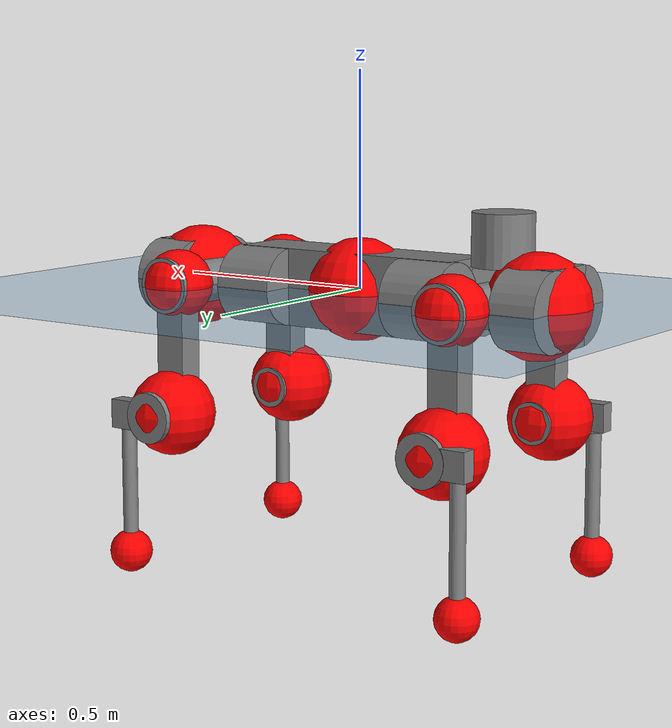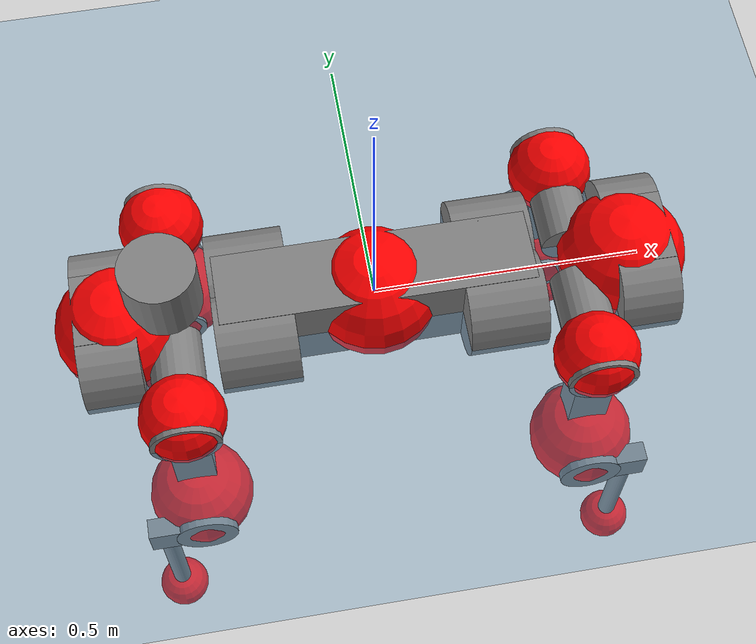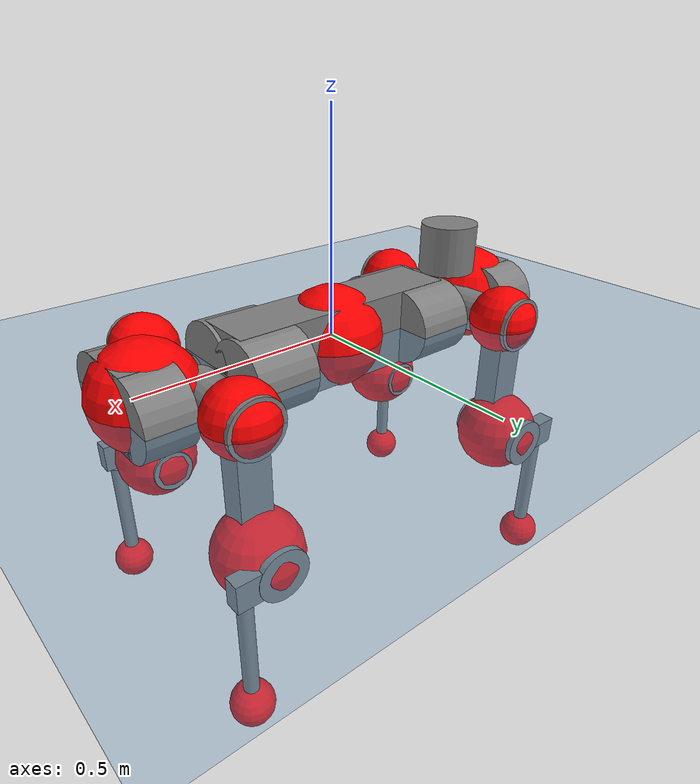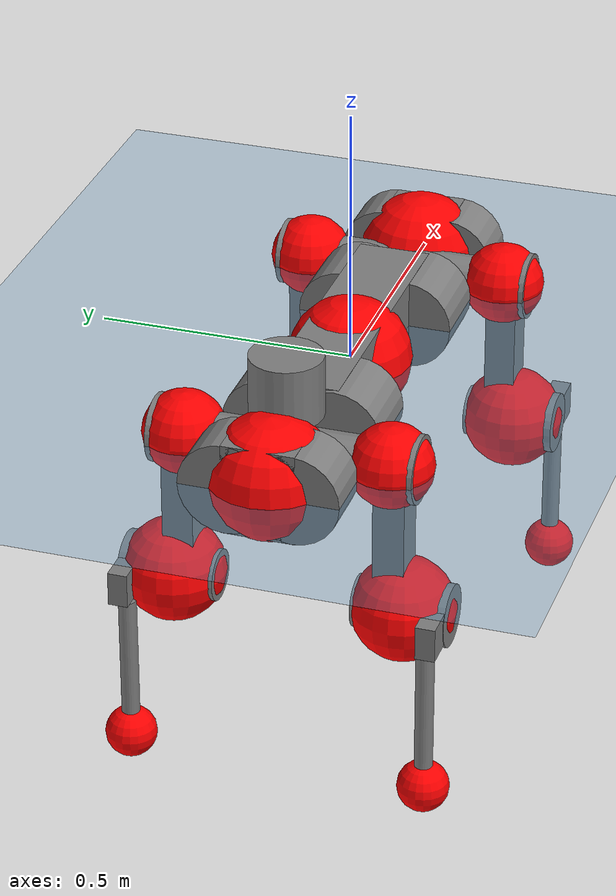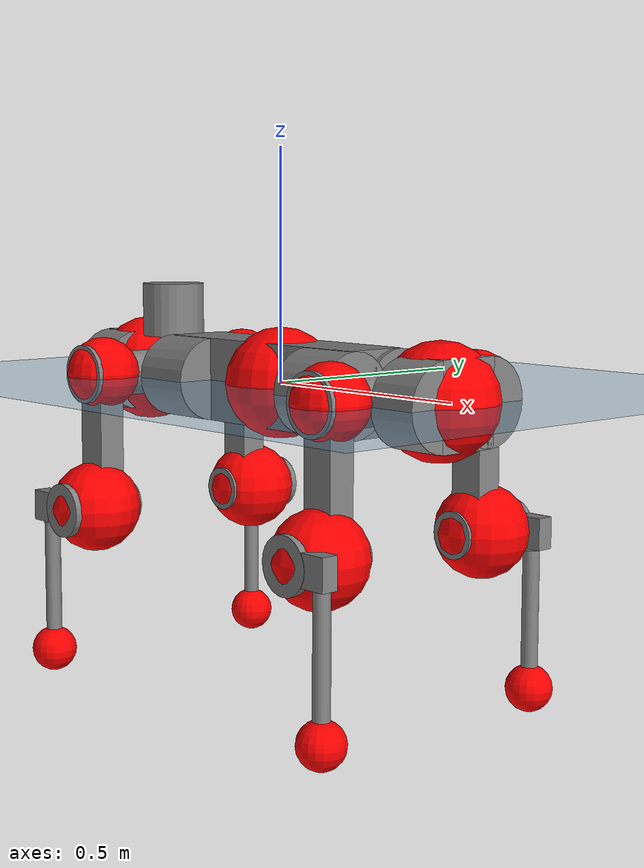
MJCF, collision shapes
<mujoco model="anymal_c">
  <compiler angle="radian" assetdir="assets" balanceinertia="true" inertiafromgeom="false"/>

  <option timestep="0.005" density="1.2" viscosity="2e-05"/>

  <size nkey="1"/>

  <visual>
    <quality shadowsize="8192"/>
    <map shadowclip="0.5"/>
  </visual>

  <default>
    <default class="/">
      <material specular="0" shininess="0.25"/>
      <geom contype="0" conaffinity="0" group="1" solref="-1000 -80"/>
      <site size="0.01 0.005 0.005" group="5"/>
      <general forcelimited="true" forcerange="-80 80" biastype="affine" gainprm="80" biasprm="0 -80 -2"/>
      <default class="anymal_c">
        <joint armature="0.01" damping="0.01" frictionloss="0.1"/>
        <default class="visual">
          <geom type="mesh" group="2"/>
          <default class="visual_zflip"/>
        </default>
        <default class="collision">
          <geom type="cylinder" group="3"/>
          <default class="foot">
            <geom size="0.03 0 0" type="sphere" condim="6" priority="1" friction="0.8 0.02 0.01" solimp="0.015 1 0.03"/>
          </default>
        </default>
      </default>
      <default class="reward_collision_sphere">
        <geom group="5" rgba="1 0 0 1"/>
      </default>
    </default>
  </default>

  <asset>
    <texture type="skybox" colorspace="auto" name="//unnamed_texture_0" builtin="gradient" rgb1="0.95 0.95 0.95" rgb2="0.95 0.95 0.95" width="100" height="600"/>
    <texture type="2d" colorspace="auto" name="texplane" builtin="checker" rgb1="0.345 0.575 0.748" rgb2="0.345 0.575 0.748" markrgb="1 1 1" width="512" height="512"/>
    <texture type="2d" colorspace="linear" name="base" file="base.png"/>
    <texture type="2d" colorspace="linear" name="top_shell" file="top_shell.png"/>
    <texture type="2d" colorspace="linear" name="bottom_shell" file="bottom_shell.png"/>
    <texture type="2d" colorspace="linear" name="remote" file="remote.png"/>
    <texture type="2d" colorspace="linear" name="hatch" file="hatch.png"/>
    <texture type="2d" colorspace="linear" name="handle" file="handle.png"/>
    <texture type="2d" colorspace="linear" name="face" file="face.png"/>
    <texture type="2d" colorspace="linear" name="battery" file="battery.png"/>
    <texture type="2d" colorspace="linear" name="lidar_cage" file="lidar_cage.png"/>
    <texture type="2d" colorspace="linear" name="depth_camera" file="depth_camera.png"/>
    <texture type="2d" colorspace="linear" name="wide_angle_camera" file="wide_angle_camera.png"/>
    <texture type="2d" colorspace="linear" name="lidar" file="lidar.png"/>
    <texture type="2d" colorspace="linear" name="drive" file="drive.png"/>
    <texture type="2d" colorspace="linear" name="hip_l" file="hip_l.png"/>
    <texture type="2d" colorspace="linear" name="shank_l" file="shank_l.png"/>
    <texture type="2d" colorspace="linear" name="foot" file="foot.png"/>
    <texture type="2d" colorspace="linear" name="thigh" file="thigh.png"/>
    <texture type="2d" colorspace="linear" name="shank_r" file="shank_r.png"/>
    <texture type="2d" colorspace="linear" name="hip_r" file="hip_r.png"/>
    <material name="MatPlane" class="/" texture="texplane" texuniform="true" texrepeat="2 2" specular="0.9" shininess="0.5"/>
    <material name="black_plastic" class="/" rgba="0.007 0.007 0.007 1"/>
    <material name="green" class="/" rgba="0.052 0.178 0.033 1"/>
    <material name="red" class="/" rgba="0.178 0.006 0.005 1"/>
    <material name="yellow" class="/" rgba="0.178 0.119 0.006 1"/>
    <material name="lwl" class="/" rgba="0.8 0.8 0.8 1"/>
    <material name="base" class="/" texture="base"/>
    <material name="top_shell" class="/" texture="top_shell"/>
    <material name="bottom_shell" class="/" texture="bottom_shell"/>
    <material name="hip_l" class="/" texture="hip_l"/>
    <material name="thigh" class="/" texture="thigh"/>
    <material name="shank_l" class="/" texture="shank_l"/>
    <material name="foot" class="/" texture="foot"/>
    <material name="hip_r" class="/" texture="hip_r"/>
    <material name="shank" class="/" texture="shank_r"/>
    <material name="hatch" class="/" texture="hatch"/>
    <material name="remote" class="/" texture="remote"/>
    <material name="handle" class="/" texture="handle"/>
    <material name="face" class="/" texture="face"/>
    <material name="depth_camera" class="/" texture="depth_camera"/>
    <material name="wide_angle_camera" class="/" texture="wide_angle_camera"/>
    <material name="battery" class="/" texture="battery"/>
    <material name="lidar_cage" class="/" texture="lidar_cage"/>
    <material name="lidar" class="/" texture="lidar"/>
    <material name="drive" class="/" texture="drive"/>
    <mesh name="base_0" class="/" file="base_0.obj"/>
    <mesh name="base_1" class="/" file="base_1.obj"/>
    <mesh name="base_2" class="/" file="base_2.obj"/>
    <mesh name="base_3" class="/" file="base_3.obj"/>
    <mesh name="base_4" class="/" file="base_4.obj"/>
    <mesh name="base_5" class="/" file="base_5.obj"/>
    <mesh name="top_shell" class="/" file="top_shell.obj"/>
    <mesh name="bottom_shell" class="/" file="bottom_shell.obj"/>
    <mesh name="remote" class="/" file="remote.obj"/>
    <mesh name="handle" class="/" file="handle.obj"/>
    <mesh name="face" class="/" file="face.obj"/>
    <mesh name="wide_angle_camera" class="/" file="wide_angle_camera.obj"/>
    <mesh name="depth_camera" class="/" file="depth_camera.obj"/>
    <mesh name="battery" class="/" file="battery.obj"/>
    <mesh name="lidar_cage" class="/" file="lidar_cage.obj"/>
    <mesh name="lidar" class="/" file="lidar.obj"/>
    <mesh name="drive" class="/" file="drive.obj"/>
    <mesh name="hip_l" class="/" file="hip_l.obj"/>
    <mesh name="thigh" class="/" file="thigh.obj"/>
    <mesh name="shank_l" class="/" file="shank_l.obj"/>
    <mesh name="foot" class="/" file="foot.obj"/>
    <mesh name="hip_r" class="/" file="hip_r.obj"/>
    <mesh name="hatch" class="/" file="hatch.obj"/>
    <mesh name="shank_r" class="/" file="shank_r.obj"/>
  </asset>

  <worldbody>
    <geom name="floor" class="/" size="100 100 0.125" type="plane" group="0" material="MatPlane"/>
    <light name="toplight_shadow" class="/" pos="0 0 5" dir="0.0990148 0.0990148 -0.990148" type="directional" ambient="0.04 0.04 0.04" diffuse="0.55 0.55 0.55" specular="0.12 0.12 0.12"/>
    <light name="toplight_fill" class="/" pos="0 0 5" dir="0.0990148 0.0990148 -0.990148" type="directional" castshadow="false" ambient="0.04 0.04 0.04" diffuse="0.3 0.3 0.3" specular="0.08 0.08 0.08"/>
    <body name="trunk" childclass="anymal_c" pos="-0.000132344 0.000803333 4.00808e-05" quat="1 0.00036866 1.78822e-05 -0.000142152">
      <inertial pos="0.00340106 -0.00112325 0.0509825" quat="0.496603 0.500306 0.503007 0.500063" mass="18.5151" diaginertia="0.769142 0.358387 0.271984"/>
      <joint name="//unnamed_joint_0" type="free" armature="0" damping="0" frictionloss="0"/>
      <geom name="//unnamed_geom_1" class="visual" material="green" mesh="base_0"/>
      <geom name="//unnamed_geom_2" class="visual" material="yellow" mesh="base_1"/>
      <geom name="//unnamed_geom_3" class="visual" material="red" mesh="base_2"/>
      <geom name="//unnamed_geom_4" class="visual" material="black_plastic" mesh="base_3"/>
      <geom name="//unnamed_geom_5" class="visual" material="lwl" mesh="base_4"/>
      <geom name="//unnamed_geom_6" class="visual" material="base" mesh="base_5"/>
      <geom name="trunk_1" class="collision" size="0.289355 0.0698443 0.0897998" type="box"/>
      <geom name="trunk_2" class="collision" size="0.0897998 0.0723387" pos="0.227061 0.0629288 0" quat="0.707107 0 0.707107 0"/>
      <geom name="trunk_3" class="collision" size="0.0897998 0.0723387" pos="-0.227061 0.0629288 0" quat="0.707107 0 0.707107 0"/>
      <geom name="trunk_4" class="collision" size="0.0897998 0.0723387" pos="0.227061 -0.0629288 0" quat="0.707107 0 0.707107 0"/>
      <geom name="trunk_5" class="collision" size="0.0897998 0.0723387" pos="-0.227061 -0.0629288 0" quat="0.707107 0 0.707107 0"/>
      <geom name="//unnamed_geom_12" class="visual" material="top_shell" mesh="top_shell"/>
      <geom name="//unnamed_geom_13" class="visual" material="bottom_shell" mesh="bottom_shell"/>
      <geom name="//unnamed_geom_14" class="visual" material="remote" mesh="remote"/>
      <geom name="//unnamed_geom_15" class="visual" material="handle" mesh="handle"/>
      <geom name="//unnamed_geom_16" class="visual" pos="0.432721 0 0" quat="1 0 0 0" material="face" mesh="face"/>
      <geom name="trunk_6" class="collision" size="0.0548777 0.0698443 0.0897998" pos="0.490139 0 0" type="box"/>
      <geom name="//unnamed_geom_18" class="collision" size="0.0897998 0.0548777" pos="0.490139 0.0629288 0" quat="0.707107 0 0.707107 0"/>
      <geom name="//unnamed_geom_19" class="collision" size="0.0897998 0.0548777" pos="0.490139 -0.0629288 0" quat="0.707107 0 0.707107 0"/>
      <geom name="//unnamed_geom_20" class="visual" pos="0.481944 0 -0.03072" quat="0.965926 0 0.258819 0" material="depth_camera" mesh="depth_camera"/>
      <geom name="//unnamed_geom_21" class="visual" pos="0.535551 0 0.0157242" material="wide_angle_camera" mesh="wide_angle_camera"/>
      <geom name="//unnamed_geom_22" class="visual_zflip" pos="-0.432721 0 0" quat="0 0 0 1" material="face" mesh="face"/>
      <geom name="trunk_7" class="collision" size="0.0548777 0.0698443 0.0897998" pos="-0.490139 0 0" quat="0 0 0 1" type="box"/>
      <geom name="//unnamed_geom_24" class="collision" size="0.0897998 0.0548777" pos="-0.490139 -0.0629288 0" quat="0 -0.707107 0 0.707107"/>
      <geom name="//unnamed_geom_25" class="collision" size="0.0897998 0.0548777" pos="-0.490139 0.0629288 0" quat="0 -0.707107 0 0.707107"/>
      <geom name="//unnamed_geom_26" class="visual" pos="-0.481944 0 -0.03072" quat="0 -0.258819 0 0.965926" material="depth_camera" mesh="depth_camera"/>
      <geom name="//unnamed_geom_27" class="visual_zflip" pos="-0.535551 0 0.0157242" quat="0 0 0 1" material="wide_angle_camera" mesh="wide_angle_camera"/>
      <geom name="//unnamed_geom_28" class="visual" material="battery" mesh="battery"/>
      <geom name="//unnamed_geom_29" class="visual" pos="0 0.0668341 0.0304648" quat="0.683013 -0.183013 0.183013 0.683013" material="depth_camera" mesh="depth_camera"/>
      <geom name="//unnamed_geom_30" class="visual" pos="0 -0.0668341 0.0304648" quat="0.683013 0.183013 0.183013 -0.683013" material="depth_camera" mesh="depth_camera"/>
      <geom name="//unnamed_geom_31" class="visual" pos="-0.380001 0 0.0772032" quat="1 0 0 0" material="lidar_cage" mesh="lidar_cage"/>
      <geom name="trunk_8" class="collision" size="0.0698443 0.0598665" pos="-0.380001 0 0.140226"/>
      <geom name="//unnamed_geom_33" class="visual" pos="-0.380001 -5.69573e-05 0.149365" quat="0.707107 0 0 -0.707107" material="lidar" mesh="lidar"/>
      <geom name="//unnamed_geom_34" class="visual" pos="0.313083 0.0935481 -2.61167e-09" quat="0.258819 0.965926 0 0" material="drive" mesh="drive"/>
      <geom name="//unnamed_geom_35" class="visual" pos="0.313083 -0.0935481 2.61167e-09" quat="0.258819 -0.965926 0 0" material="drive" mesh="drive"/>
      <geom name="//unnamed_geom_36" class="visual" pos="-0.313083 0.0935481 2.61167e-09" quat="0 0 0.965926 -0.258819" material="drive" mesh="drive"/>
      <geom name="//unnamed_geom_37" class="visual" pos="-0.313083 -0.0935481 -2.61167e-09" quat="0 0 -0.965926 -0.258819" material="drive" mesh="drive"/>
      <geom name="//unnamed_geom_38" class="visual" pos="0.121099 0 0.076678" quat="1 0 0 0" material="hatch" mesh="hatch"/>
      <geom name="//unnamed_geom_39" class="reward_collision_sphere" size="0.119733"/>
      <geom name="//unnamed_geom_40" class="reward_collision_sphere" size="0.119733" pos="0.469782 0 0"/>
      <geom name="//unnamed_geom_41" class="reward_collision_sphere" size="0.119733" pos="-0.469782 0 0"/>
      <site name="imu" pos="0.259472 0.00599219 0.0470826" size="0.00997776"/>
      <camera name="track" pos="0 -1.79797 0" quat="0.707107 0.707107 0 0" mode="trackcom"/>
      <camera name="ego_camera" pos="0.469782 0 -0.0420153" quat="-0.5 -0.5 0.5 0.5"/>
      <body name="LF_HIP" pos="0.313751 0.0937511 -0.000136773" quat="0.258822 0.965925 -1.81664e-05 -7.97808e-05">
        <inertial pos="0.0591471 -0.0131813 -0.00867929" quat="-0.130926 0.709813 -0.128982 0.679991" mass="2.77566" diaginertia="0.00733051 0.00293396 0.00424951"/>
        <joint name="LF_HAA" pos="0 0 0" axis="0.999999 0.00113419 -0.000253083" range="-0.7014 0.478683" armature="0.0101103" damping="0.00881292" frictionloss="0.0986905"/>
        <geom name="//unnamed_geom_42" class="visual" pos="0 -0.000153633 2.52341e-05" quat="0.258819 -0.965926 0 0" material="hip_l" mesh="hip_l"/>
        <geom name="//unnamed_geom_43" class="visual" pos="0.0625332 -0.0739172 -0.043796" quat="0.183013 -0.683013 0.683013 0.183013" material="drive" mesh="drive"/>
        <geom name="//unnamed_geom_44" class="collision" size="0.0498888 0.0698443" pos="0.0625332 -0.0107517 -0.0072529" quat="-0.353553 -0.612372 0.612372 -0.353553"/>
        <body name="LF_THIGH" pos="0.0627549 -0.0665119 -0.044572" quat="0.182681 -0.682729 0.683386 0.183009">
          <inertial pos="0.0321839 0.00123466 -0.258486" quat="0.993206 -0.00732912 -0.07917 0.0849736" mass="3.02271" diaginertia="0.0374966 0.017792 0.00536667"/>
          <joint name="LF_HFE" pos="0 0 0" axis="0.999998 0.00190665 0.00095365" range="-3.12945 3.12641" armature="0.0104956" damping="0.0117388" frictionloss="0.104465"/>
          <geom name="//unnamed_geom_45" class="visual" pos="0.00288446 4.54523e-06 0" quat="0.707107 0 0 -0.707107" material="thigh" mesh="thigh"/>
          <geom name="//unnamed_geom_46" class="collision" size="0.0648554 0.039911" pos="0.0417584 0 0" quat="0.5 0.5 -0.5 -0.5"/>
          <geom name="//unnamed_geom_47" class="collision" size="0.0374166 0.0299333 0.141" pos="0.0313188 0 -0.148434" quat="0.707107 0 0 -0.707107" type="box"/>
          <geom name="//unnamed_geom_48" class="visual" pos="0.104709 0 -0.299359" quat="1 0 0 0" material="drive" mesh="drive"/>
          <geom name="//unnamed_geom_49" class="collision" size="0.0498888 0.0698443" pos="0.031632 0 -0.299359" quat="0.707107 0 0.707107 0"/>
          <geom name="//unnamed_geom_50" class="reward_collision_sphere" size="0.079822" pos="0.026099 0 0"/>
          <body name="LF_SHANK" pos="0.104935 -0.000203712 -0.300528" quat="1 -4.19241e-05 2.65034e-05 2.7473e-05">
            <inertial pos="0.00542628 -0.0541591 -0.0845336" quat="0.992926 -0.115962 0.000618032 -0.0254919" mass="0.589159" diaginertia="0.0127594 0.00552128 0.00144594"/>
            <joint name="LF_KFE" pos="0 0 0" axis="1 3.62324e-06 -4.18231e-05" range="-3.11788 3.13212" armature="0.0104813" damping="0.00476652" frictionloss="0.0990186"/>
            <geom name="//unnamed_geom_51" class="visual" pos="0.000940558 0.0050151 0" quat="0.707107 0 0 -0.707107" material="shank_l" mesh="shank_l"/>
            <geom name="LF_kfe_act" class="collision" size="0.0598665 0.0199555" pos="0.0208792 0 0" quat="0.5 0.5 -0.5 -0.5"/>
            <geom name="//unnamed_geom_53" class="collision" size="0.0573711 0.0336749 0.0189577" pos="0.0208792 -0.0516906 0" quat="0.5 0.5 -0.5 -0.5" type="box"/>
            <geom name="//unnamed_geom_54" class="visual" pos="0.0136234 -0.0774494 -0.354998" quat="0.382683 0 0 -0.92388" material="foot" mesh="foot"/>
            <geom name="LF_calf" class="collision" size="0.0174611 0.140938" pos="0.0136237 -0.0790656 -0.177499" quat="0.707107 0 0 -0.707107"/>
            <geom name="LF_foot" class="foot" size="0.0300867" pos="0.0136237 -0.0790656 -0.331365" quat="0.707107 0 0 -0.707107"/>
            <geom name="//unnamed_geom_57" class="reward_collision_sphere" size="0.0997776" pos="-0.052198 0 0"/>
            <geom name="//unnamed_geom_58" class="reward_collision_sphere" size="0.0498888" pos="0.0136237 -0.0790656 -0.331365"/>
            <site name="LF_foot" class="foot" pos="0.0136237 -0.0790656 -0.331365" quat="0.707107 0 0 -0.707107" size="0.00997776"/>
          </body>
        </body>
      </body>
      <body name="RF_HIP" pos="0.312719 -0.0930651 -0.00130139" quat="0.258797 -0.965932 0.000140688 5.98924e-06">
        <inertial pos="0.0589629 0.0134584 -0.00812564" quat="0.133523 0.679706 0.127979 0.709783" mass="2.78033" diaginertia="0.00733352 0.00289186 0.00419617"/>
        <joint name="RF_HAA" pos="0 0 0" axis="0.999995 0.00181118 -0.00257136" range="-0.495282 0.72511" armature="0.0104344" damping="0.0101939" frictionloss="0.100385"/>
        <geom name="//unnamed_geom_59" class="visual" pos="0 0.000153632 2.5234e-05" quat="0.258819 0.965926 0 0" material="hip_r" mesh="hip_r"/>
        <geom name="//unnamed_geom_60" class="visual" pos="0.0625332 0.0739172 -0.043796" quat="0.183013 0.683013 0.683013 -0.183013" material="drive" mesh="drive"/>
        <geom name="//unnamed_geom_61" class="collision" size="0.0498888 0.0698443" pos="0.0625332 0.0107517 -0.0072529" quat="-0.353553 0.612372 0.612372 0.353553"/>
        <body name="RF_THIGH" pos="0.0633371 0.0662165 -0.0454624" quat="0.183018 0.682964 0.683042 -0.18308">
          <inertial pos="0.0313649 0.000789416 -0.257134" quat="0.992736 -0.00661043 -0.0810896 0.0886338" mass="3.05515" diaginertia="0.0379079 0.0175575 0.00535336"/>
          <joint name="RF_HFE" pos="0 0 0" axis="0.999996 -0.00177809 0.00232678" stiffness="0.00860455" range="-3.14146 3.13278" armature="0.00984788" damping="0.0102238" frictionloss="0.104257"/>
          <geom name="//unnamed_geom_62" class="visual" pos="0.00288446 4.54523e-06 0" quat="0.707107 0 0 -0.707107" material="thigh" mesh="thigh"/>
          <geom name="//unnamed_geom_63" class="collision" size="0.0648554 0.039911" pos="0.0417584 0 0" quat="0.5 0.5 0.5 0.5"/>
          <geom name="//unnamed_geom_64" class="collision" size="0.0374166 0.0299333 0.141" pos="0.0313188 0 -0.148434" quat="0.707107 0 0 0.707107" type="box"/>
          <geom name="//unnamed_geom_65" class="visual" pos="0.104709 0 -0.299359" quat="1 0 0 0" material="drive" mesh="drive"/>
          <geom name="//unnamed_geom_66" class="collision" size="0.0498888 0.0698443" pos="0.031632 0 -0.299359" quat="0.707107 0 0.707107 0"/>
          <geom name="//unnamed_geom_67" class="reward_collision_sphere" size="0.079822" pos="0.026099 0 0"/>
          <body name="RF_SHANK" pos="0.104856 -0.000232323 -0.298224" quat="1 -9.86899e-05 -0.000202876 8.65449e-05">
            <inertial pos="0.00684319 0.0542939 -0.084866" quat="0.993252 0.112914 -0.000986501 0.0264672" mass="0.592728" diaginertia="0.0128511 0.00544995 0.00146694"/>
            <joint name="RF_KFE" pos="0 0 0" axis="0.999997 0.0025836 0.00019552" range="-3.14812 3.14118" armature="0.00974812" damping="0.00120507" frictionloss="0.101705"/>
            <geom name="//unnamed_geom_68" class="visual" pos="0.000940553 -0.00501509 0" quat="0.707107 0 0 0.707107" material="shank" mesh="shank_r"/>
            <geom name="RF_kfe_act" class="collision" size="0.0598665 0.0199555" pos="0.0208792 0 0" quat="0.5 0.5 0.5 0.5"/>
            <geom name="//unnamed_geom_70" class="collision" size="0.0573711 0.0336749 0.0189577" pos="0.0208792 0.0516906 0" quat="0.5 0.5 0.5 0.5" type="box"/>
            <geom name="//unnamed_geom_71" class="visual" pos="0.0136239 0.0774494 -0.354998" quat="0.382683 0 0 0.92388" material="foot" mesh="foot"/>
            <geom name="RF_calf" class="collision" size="0.0174611 0.140938" pos="0.0136237 0.0790656 -0.177499" quat="0.707107 0 0 0.707107"/>
            <geom name="RF_foot" class="foot" size="0.0275262" pos="0.0136237 0.0790656 -0.331365" quat="0.707107 0 0 0.707107"/>
            <geom name="//unnamed_geom_74" class="reward_collision_sphere" size="0.0997776" pos="-0.052198 0 0"/>
            <geom name="//unnamed_geom_75" class="reward_collision_sphere" size="0.0498888" pos="0.0136237 0.0790656 -0.331365"/>
            <site name="RF_foot" class="foot" pos="0.0136237 0.0790656 -0.331365" quat="0.707107 0 0 0.707107" size="0.00997776"/>
          </body>
        </body>
      </body>
      <body name="LH_HIP" pos="-0.312586 0.0928014 -0.000141547" quat="1.53506e-05 -5.96263e-05 0.965929 -0.258807">
        <inertial pos="0.0597935 0.0131534 -0.00964647" quat="0.136368 0.677845 0.128699 0.710892" mass="2.73777" diaginertia="0.00726458 0.00293859 0.00418429"/>
        <joint name="LH_HAA" pos="0 0 0" axis="0.999995 -0.00297227 -0.00144186" range="-0.496126 0.72678" armature="0.00975854" damping="0.0101444" frictionloss="0.0976361"/>
        <geom name="//unnamed_geom_76" class="visual" pos="0 0.000153632 2.5234e-05" quat="-0.258819 -0.965926 0 0" material="hip_r" mesh="hip_r"/>
        <geom name="//unnamed_geom_77" class="visual" pos="0.0625332 0.0739172 -0.043796" quat="0.183013 0.683013 0.683013 -0.183013" material="drive" mesh="drive"/>
        <geom name="//unnamed_geom_78" class="collision" size="0.0498888 0.0698443" pos="0.0625332 0.0107517 -0.0072529" quat="-0.353553 0.612372 0.612372 0.353553"/>
        <body name="LH_THIGH" pos="0.0620129 0.0660093 -0.0448604" quat="0.182826 0.683365 0.682797 -0.18269">
          <inertial pos="0.0319576 0.00123711 -0.258207" quat="0.992974 -0.00502111 -0.0783958 0.0884991" mass="3.01085" diaginertia="0.0378958 0.0173252 0.00535926"/>
          <joint name="LH_HFE" pos="0 0 0" axis="0.999987 0.0033972 0.00374223" range="-3.14963 3.14625" armature="0.00956498" damping="0.00605303" frictionloss="0.104451"/>
          <geom name="//unnamed_geom_79" class="visual" pos="0.00288446 4.54523e-06 0" quat="0.707107 0 0 -0.707107" material="thigh" mesh="thigh"/>
          <geom name="//unnamed_geom_80" class="collision" size="0.0648554 0.039911" pos="0.0417584 0 0" quat="0.5 0.5 -0.5 -0.5"/>
          <geom name="//unnamed_geom_81" class="collision" size="0.0374166 0.0299333 0.141" pos="0.0313188 0 -0.148434" quat="0.707107 0 0 -0.707107" type="box"/>
          <geom name="//unnamed_geom_82" class="visual" pos="0.104709 0 -0.299359" quat="1 0 0 0" material="drive" mesh="drive"/>
          <geom name="//unnamed_geom_83" class="collision" size="0.0498888 0.0698443" pos="0.031632 0 -0.299359" quat="0.707107 0 0.707107 0"/>
          <geom name="//unnamed_geom_84" class="reward_collision_sphere" size="0.079822" pos="0.026099 0 0"/>
          <body name="LH_SHANK" pos="0.10534 -0.000803306 -0.300354" quat="1 -0.000469095 0.000155814 -0.000175406">
            <inertial pos="0.00584562 0.054751 -0.084675" quat="0.993028 0.115141 -2.78097e-05 0.0252432" mass="0.588026" diaginertia="0.0127816 0.00549655 0.00144672"/>
            <joint name="LH_KFE" pos="0 0 0" axis="0.999999 0.000793131 0.000982447" range="-3.1268 3.14109" armature="0.0105458" damping="0.0059646" frictionloss="0.104084"/>
            <geom name="//unnamed_geom_85" class="visual" pos="0.000940553 -0.00501509 0" quat="-0.707107 0 0 -0.707107" material="shank" mesh="shank_r"/>
            <geom name="LH_kfe_act" class="collision" size="0.0598665 0.0199555" pos="0.0208792 0 0" quat="0.5 0.5 -0.5 -0.5"/>
            <geom name="//unnamed_geom_87" class="collision" size="0.0573711 0.0336749 0.0189577" pos="0.0208792 0.0516906 0" quat="0.5 0.5 -0.5 -0.5" type="box"/>
            <geom name="//unnamed_geom_88" class="visual" pos="0.0136239 0.0774494 -0.354998" quat="-0.382683 0 0 -0.92388" material="foot" mesh="foot"/>
            <geom name="LH_calf" class="collision" size="0.0174611 0.140938" pos="0.0136237 0.0790656 -0.177499" quat="0.707107 0 0 -0.707107"/>
            <geom name="LH_foot" class="foot" size="0.0316296" pos="0.0136237 0.0790656 -0.331365" quat="0.707107 0 0 -0.707107"/>
            <geom name="//unnamed_geom_91" class="reward_collision_sphere" size="0.0997776" pos="-0.052198 0 0"/>
            <geom name="//unnamed_geom_92" class="reward_collision_sphere" size="0.0498888" pos="0.0136237 0.0790656 -0.331365"/>
            <site name="LH_foot" class="foot" pos="0.0136237 0.0790656 -0.331365" quat="0.707107 0 0 -0.707107" size="0.00997776"/>
          </body>
        </body>
      </body>
      <body name="RH_HIP" pos="-0.314072 -0.0932469 0.000221361" quat="0.000278126 -0.000698741 -0.965885 -0.25897">
        <inertial pos="0.0588544 -0.0138529 -0.00937058" quat="-0.128011 0.709036 -0.135358 0.680117" mass="2.78824" diaginertia="0.007339 0.00291831 0.00432547"/>
        <joint name="RH_HAA" pos="0 0 0" axis="1 -0.000327933 0.000121787" range="-0.73268 0.478093" armature="0.0102175" damping="0.0116551" frictionloss="0.0952847"/>
        <geom name="//unnamed_geom_93" class="visual" pos="0 -0.000153633 2.52341e-05" quat="-0.258819 0.965926 0 0" material="hip_l" mesh="hip_l"/>
        <geom name="//unnamed_geom_94" class="visual" pos="0.0625332 -0.0739172 -0.043796" quat="-0.183013 0.683013 -0.683013 -0.183013" material="drive" mesh="drive"/>
        <geom name="//unnamed_geom_95" class="collision" size="0.0498888 0.0698443" pos="0.0625332 -0.0107517 -0.0072529" quat="0.353553 0.612372 -0.612372 0.353553"/>
        <body name="RH_THIGH" pos="0.0631983 -0.066034 -0.0444375" quat="-0.183275 0.682876 -0.683114 -0.182882">
          <inertial pos="0.0325645 0.000439595 -0.257612" quat="0.993002 -0.00480585 -0.0803924 0.0863752" mass="3.06616" diaginertia="0.0376299 0.017618 0.00543285"/>
          <joint name="RH_HFE" pos="0 0 0" axis="0.999998 -5.6693e-05 -0.0019786" range="-3.14539 3.16876" armature="0.00948407" damping="0.00730388" frictionloss="0.100916"/>
          <geom name="//unnamed_geom_96" class="visual" pos="0.00288446 4.54523e-06 0" quat="0.707107 0 0 -0.707107" material="thigh" mesh="thigh"/>
          <geom name="//unnamed_geom_97" class="collision" size="0.0648554 0.039911" pos="0.0417584 0 0" quat="0.5 0.5 0.5 0.5"/>
          <geom name="//unnamed_geom_98" class="collision" size="0.0374166 0.0299333 0.141" pos="0.0313188 0 -0.148434" quat="0.707107 0 0 0.707107" type="box"/>
          <geom name="//unnamed_geom_99" class="visual" pos="0.104709 0 -0.299359" quat="1 0 0 0" material="drive" mesh="drive"/>
          <geom name="//unnamed_geom_100" class="collision" size="0.0498888 0.0698443" pos="0.031632 0 -0.299359" quat="0.707107 0 0.707107 0"/>
          <geom name="//unnamed_geom_101" class="reward_collision_sphere" size="0.079822" pos="0.026099 0 0"/>
          <body name="RH_SHANK" pos="0.103599 0.00052063 -0.299345" quat="1 2.4718e-05 -3.17012e-07 -3.01723e-05">
            <inertial pos="0.00673157 -0.0544237 -0.0848445" quat="0.992886 -0.116326 -0.000990551 -0.0254035" mass="0.578739" diaginertia="0.0126227 0.00536793 0.00143131"/>
            <joint name="RH_KFE" pos="0 0 0" axis="0.999979 -0.00232167 0.00601871" stiffness="0.000905314" range="-3.11505 3.11952" armature="0.00983721" damping="0.00580808" frictionloss="0.0951449"/>
            <geom name="//unnamed_geom_102" class="visual" pos="0.000940558 0.0050151 0" quat="0.707107 0 0 -0.707107" material="shank_l" mesh="shank_l"/>
            <geom name="RH_kfe_act" class="collision" size="0.0598665 0.0199555" pos="0.0208792 0 0" quat="0.5 0.5 0.5 0.5"/>
            <geom name="//unnamed_geom_104" class="collision" size="0.0573711 0.0336749 0.0189577" pos="0.0208792 -0.0516906 0" quat="0.5 0.5 0.5 0.5" type="box"/>
            <geom name="//unnamed_geom_105" class="visual" pos="0.0136234 -0.0774494 -0.354998" quat="0.382683 0 0 -0.92388" material="foot" mesh="foot"/>
            <geom name="RH_calf" class="collision" size="0.0174611 0.140938" pos="0.0136237 -0.0790656 -0.177499" quat="0.707107 0 0 0.707107"/>
            <geom name="RH_foot" class="foot" size="0.028575" pos="0.0136237 -0.0790656 -0.331365" quat="0.707107 0 0 0.707107"/>
            <geom name="//unnamed_geom_108" class="reward_collision_sphere" size="0.0997776" pos="-0.052198 0 0"/>
            <geom name="//unnamed_geom_109" class="reward_collision_sphere" size="0.0498888" pos="0.0136237 -0.0790656 -0.331365"/>
            <site name="RH_foot" class="foot" pos="0.0136237 -0.0790656 -0.331365" quat="0.707107 0 0 0.707107" size="0.00997776"/>
          </body>
        </body>
      </body>
    </body>
  </worldbody>

  <contact>
    <pair class="/" geom1="floor" geom2="LF_foot" name="//unnamed_contact_0"/>
    <pair class="/" geom1="floor" geom2="RF_foot" name="//unnamed_contact_1"/>
    <pair class="/" geom1="floor" geom2="LH_foot" name="//unnamed_contact_2"/>
    <pair class="/" geom1="floor" geom2="RH_foot" name="//unnamed_contact_3"/>
  </contact>

  <actuator>
    <general name="LF_HAA" class="/" joint="LF_HAA" forcerange="-77.7123 77.7123" gainprm="80.4704" biasprm="0 -80.4704 -1.88556"/>
    <general name="LF_HFE" class="/" joint="LF_HFE" forcerange="-79.7307 79.7307" gainprm="80.4704" biasprm="0 -80.4704 -1.88556"/>
    <general name="LF_KFE" class="/" joint="LF_KFE" forcerange="-79.9968 79.9968" gainprm="80.4704" biasprm="0 -80.4704 -1.88556"/>
    <general name="RF_HAA" class="/" joint="RF_HAA" forcerange="-83.1499 83.1499" gainprm="80.4704" biasprm="0 -80.4704 -1.88556"/>
    <general name="RF_HFE" class="/" joint="RF_HFE" forcerange="-80.7751 80.7751" gainprm="80.4704" biasprm="0 -80.4704 -1.88556"/>
    <general name="RF_KFE" class="/" joint="RF_KFE" forcerange="-81.7851 81.7851" gainprm="80.4704" biasprm="0 -80.4704 -1.88556"/>
    <general name="LH_HAA" class="/" joint="LH_HAA" forcerange="-79.6815 79.6815" gainprm="80.4704" biasprm="0 -80.4704 -1.88556"/>
    <general name="LH_HFE" class="/" joint="LH_HFE" forcerange="-80.5946 80.5946" gainprm="80.4704" biasprm="0 -80.4704 -1.88556"/>
    <general name="LH_KFE" class="/" joint="LH_KFE" forcerange="-79.5495 79.5495" gainprm="80.4704" biasprm="0 -80.4704 -1.88556"/>
    <general name="RH_HAA" class="/" joint="RH_HAA" forcerange="-82.3936 82.3936" gainprm="80.4704" biasprm="0 -80.4704 -1.88556"/>
    <general name="RH_HFE" class="/" joint="RH_HFE" forcerange="-78.689 78.689" gainprm="80.4704" biasprm="0 -80.4704 -1.88556"/>
    <general name="RH_KFE" class="/" joint="RH_KFE" forcerange="-81.0544 81.0544" gainprm="80.4704" biasprm="0 -80.4704 -1.88556"/>
  </actuator>

  <sensor>
    <gyro site="imu" name="imu_angular_velocity"/>
    <velocimeter site="imu" name="imu_linear_velocity"/>
    <framelinvel objtype="site" objname="LF_foot" name="LF_foot_global_linear_velocity"/>
    <framelinvel objtype="site" objname="RF_foot" name="RF_foot_global_linear_velocity"/>
    <framelinvel objtype="site" objname="LH_foot" name="LH_foot_global_linear_velocity"/>
    <framelinvel objtype="site" objname="RH_foot" name="RH_foot_global_linear_velocity"/>
  </sensor>

  <keyframe>
    <key name="home" qpos="0 0 0.55 1 0 0 0 0 0.4 -0.8 0 -0.4 0.8 0 -0.4 0.8 0 0.4 -0.8"/>
  </keyframe>
</mujoco>
